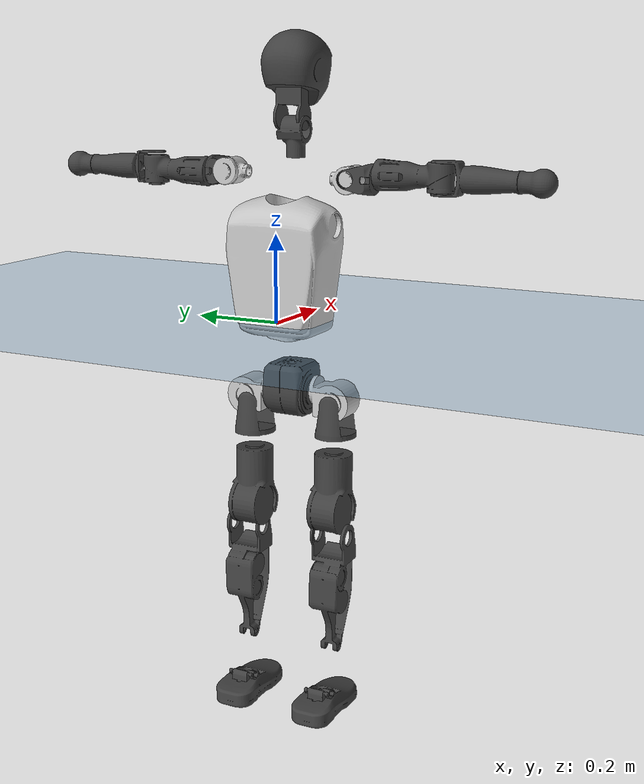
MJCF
<mujoco model="T1">
  <compiler angle="radian" assetdir="assets" balanceinertia="true" inertiafromgeom="false"/>

  <option timestep="0.005" density="1.2" viscosity="2e-05"/>

  <size nkey="1"/>

  <visual>
    <quality shadowsize="8192"/>
    <map shadowclip="0.5"/>
  </visual>

  <default>
    <default class="/">
      <joint armature="0.01" damping="0.01" frictionloss="0.1"/>
      <geom contype="0" conaffinity="0" group="1" solref="-1000 -80"/>
      <site size="0.01 0.005 0.005" group="5"/>
      <general forcelimited="true" biastype="affine" gainprm="25" biasprm="0 -25 -0.6"/>
      <default class="t1">
        <geom rgba="0.25 0.25 0.25 1"/>
        <default class="visual">
          <geom type="mesh" group="2"/>
        </default>
        <default class="collision">
          <geom group="3"/>
        </default>
        <default class="foot">
          <geom size="0.1115 0.05 0.015" type="box" condim="6" group="4" priority="1" solimp="0.015 1 0.015"/>
        </default>
        <default class="reward_collision_sphere">
          <geom group="5" rgba="1 0 0 1"/>
        </default>
      </default>
    </default>
  </default>

  <asset>
    <texture type="skybox" colorspace="auto" name="//unnamed_texture_0" builtin="gradient" rgb1="0.95 0.95 0.95" rgb2="0.95 0.95 0.95" width="100" height="600"/>
    <texture type="2d" colorspace="auto" name="texplane" builtin="checker" rgb1="0.345 0.575 0.748" rgb2="0.345 0.575 0.748" markrgb="1 1 1" width="512" height="512"/>
    <material name="MatPlane" class="/" texture="texplane" texuniform="true" texrepeat="2 2" specular="0.9"/>
    <mesh name="Trunk" class="/" file="Trunk.stl"/>
    <mesh name="H1" class="/" file="H1.stl"/>
    <mesh name="H2" class="/" file="H2.stl"/>
    <mesh name="AL1" class="/" file="AL1.stl"/>
    <mesh name="AL2" class="/" file="AL2.stl"/>
    <mesh name="AL3" class="/" file="AL3.stl"/>
    <mesh name="left_hand_link" class="/" file="left_hand_link.stl"/>
    <mesh name="AR1" class="/" file="AR1.stl"/>
    <mesh name="AR2" class="/" file="AR2.stl"/>
    <mesh name="AR3" class="/" file="AR3.stl"/>
    <mesh name="right_hand_link" class="/" file="right_hand_link.stl"/>
    <mesh name="Waist" class="/" file="Waist.stl"/>
    <mesh name="Hip_Pitch_Left" class="/" file="Hip_Pitch_Left.stl"/>
    <mesh name="Hip_Roll_Left" class="/" file="Hip_Roll_Left.stl"/>
    <mesh name="Hip_Yaw_Left" class="/" file="Hip_Yaw_Left.stl"/>
    <mesh name="Shank_Left" class="/" file="Shank_Left.stl"/>
    <mesh name="Ankle_Cross_Left" class="/" file="Ankle_Cross_Left.stl"/>
    <mesh name="left_foot_link" class="/" file="left_foot_link.stl"/>
    <mesh name="Hip_Pitch_Right" class="/" file="Hip_Pitch_Right.stl"/>
    <mesh name="Hip_Roll_Right" class="/" file="Hip_Roll_Right.stl"/>
    <mesh name="Hip_Yaw_Right" class="/" file="Hip_Yaw_Right.stl"/>
    <mesh name="Shank_Right" class="/" file="Shank_Right.stl"/>
    <mesh name="Ankle_Cross_Right" class="/" file="Ankle_Cross_Right.stl"/>
    <mesh name="right_foot_link" class="/" file="right_foot_link.stl"/>
  </asset>

  <worldbody>
    <geom name="floor" class="/" size="100 100 0.125" type="plane" group="0" material="MatPlane"/>
    <light name="toplight_shadow" class="/" pos="0 0 5" dir="0.0990148 0.0990148 -0.990148" type="directional" ambient="0.04 0.04 0.04" diffuse="0.55 0.55 0.55" specular="0.12 0.12 0.12"/>
    <light name="toplight_fill" class="/" pos="0 0 5" dir="0.0990148 0.0990148 -0.990148" type="directional" castshadow="false" ambient="0.04 0.04 0.04" diffuse="0.3 0.3 0.3" specular="0.08 0.08 0.08"/>
    <body name="trunk" childclass="t1" pos="-0.000486724 0.0032175 0.00185072" quat="0.999996 0.000844442 -0.00231385 -0.00165501">
      <inertial pos="0.0792091 0.00141288 0.15047" quat="0.999501 0.0212189 -0.0113618 0.0204535" mass="25.8802" diaginertia="0.424523 0.0884127 0.317547"/>
      <joint name="//unnamed_joint_0" type="free" armature="0" damping="0" frictionloss="0"/>
      <geom name="//unnamed_geom_1" class="visual" rgba="0.76 0.76 0.76 1" mesh="Trunk"/>
      <geom name="//unnamed_geom_2" class="collision" size="0.0975082 0.130011 0.195016" pos="0.0854348 0 0.173425" type="box"/>
      <geom name="//unnamed_geom_3" class="reward_collision_sphere" size="0.149513" pos="0.0854348 0 0.144521"/>
      <geom name="//unnamed_geom_4" class="reward_collision_sphere" size="0.0195016" pos="0.0854348 0.0876528 0"/>
      <geom name="//unnamed_geom_5" class="reward_collision_sphere" size="0.0195016" pos="0.0854348 -0.0876528 0"/>
      <geom name="//unnamed_geom_6" class="reward_collision_sphere" size="0.0195016" pos="0.0854348 0.110339 0.260137"/>
      <geom name="//unnamed_geom_7" class="reward_collision_sphere" size="0.0195016" pos="0.0854348 -0.110339 0.260137"/>
      <site name="imu" pos="-0.0279459 -0.00147649 0.0271645" size="0.0130011"/>
      <camera name="track" pos="0 -2.06242 0" quat="0.707107 0.707107 0 0" mode="trackcom"/>
      <camera name="ego_camera" pos="0.173717 0 0.606986" quat="-0.5 -0.5 0.5 0.5"/>
      <body name="H1" pos="0.0956013 -0.00180224 0.360099" quat="1 -8.18361e-05 7.03863e-06 0.000228144">
        <inertial pos="-0.00155981 -0.00353829 0.0828907" quat="0.764971 -0.0181973 0.00751674 0.643764" mass="0.970731" diaginertia="0.00145235 0.000252516 0.000944766"/>
        <joint name="AAHead_yaw" pos="0 0 0" axis="0.00401114 0.00309491 0.999987" range="-1.68107 1.60982" armature="0.00726576" damping="0.0159767" frictionloss="0.076297"/>
        <geom name="//unnamed_geom_8" class="visual" mesh="H1"/>
        <body name="H2" pos="0.00217605 0.0109174 0.089495" quat="1 -0.000331398 0.000666363 0.000531401">
          <inertial pos="0.00431335 0.00840442 0.152499" quat="0.992728 0.0820031 -0.0687552 -0.0551312" mass="1.37602" diaginertia="0.0124317 0.0025886 0.0112692"/>
          <joint name="Head_pitch" pos="0 0 0" axis="0.00577147 -0.999982 0.00166172" range="-1.2004 0.354407" armature="0.0101196" damping="0.0502548" frictionloss="0.138635"/>
          <geom name="//unnamed_geom_9" class="visual" mesh="H2"/>
          <geom name="//unnamed_geom_10" class="collision" size="0.104009" pos="0.0142391 0 0.158973"/>
          <geom name="//unnamed_geom_11" class="reward_collision_sphere" size="0.11701" pos="0.0284783 0 0.144521"/>
        </body>
      </body>
      <body name="AL1" pos="0.0828783 0.11261 0.325302" quat="0.999987 -0.000700599 0.00495018 0.0011941">
        <inertial pos="0.00364625 0.0477214 -0.00163714" quat="0.505853 0.496625 -0.502753 0.494687" mass="1.21912" diaginertia="0.00840286 0.00175912 0.00210271"/>
        <joint name="Left_Shoulder_Pitch" pos="0 0 0" axis="-0.0261962 0.999593 -0.0112998" stiffness="0.00222334" range="-3.23137 1.03227" armature="0.0129114" damping="0.0514844" frictionloss="0.107693"/>
        <geom name="//unnamed_geom_12" class="visual" rgba="0.76 0.76 0.76 1" mesh="AL1"/>
        <body name="AL2" pos="0.00831005 0.0470332 -0.00143109" quat="1 0.000382161 0.000153337 -0.000294169">
          <inertial pos="0.00786214 0.030428 0.00302854" quat="0.485555 0.512884 -0.491737 0.509295" mass="0.325459" diaginertia="0.00227119 0.000382775 0.00110096"/>
          <joint name="Left_Shoulder_Roll" pos="0 0 0" axis="-0.999978 -0.00607456 -0.00260638" stiffness="0.0531896" range="-1.63329 1.77088" armature="0.00690467" damping="0.0199358" frictionloss="0.12759"/>
          <geom name="//unnamed_geom_13" class="visual" mesh="AL2"/>
          <body name="AL3" pos="-0.000976316 0.0616951 -0.00373624" quat="1 -7.37415e-07 1.58944e-05 0.000107107">
            <inertial pos="-0.00782374 0.09684 -0.00202821" quat="0.704293 0.709663 -0.0186942 0.000670022" mass="2.67838" diaginertia="0.0740572 0.0164474 0.00454859"/>
            <joint name="Left_Elbow_Pitch" pos="0 0 0" axis="0.0103581 -0.9999 0.00962206" stiffness="0.00869523" range="-2.07787 2.30859" armature="0.0060514" damping="0.0105084" frictionloss="0.117522"/>
            <geom name="//unnamed_geom_14" class="visual" mesh="AL3"/>
            <geom name="//unnamed_geom_15" class="collision" size="0.0390033 0.0975082" pos="0 0.0515604 0" quat="0.707105 0.707108 0 0" type="cylinder"/>
            <geom name="//unnamed_geom_16" class="reward_collision_sphere" size="0.0468039"/>
            <body name="left_hand_link" pos="7.63704e-05 0.15261 0.00479014" quat="0.999989 -0.00466471 6.89725e-05 -0.000121368">
              <inertial pos="0.00958984 0.110872 0.000308879" quat="0.707783 0.70643 5.85595e-05 -0.000379908" mass="0.708098" diaginertia="0.052638 0.00925294 0.00122166"/>
              <joint name="Left_Elbow_Yaw" pos="0 0 0" axis="0.00169155 -0.00426074 0.999989" range="-2.46714 0.197095" armature="0.0121192" damping="0" frictionloss="0.140893"/>
              <geom name="//unnamed_geom_17" class="visual" mesh="left_hand_link"/>
              <geom name="//unnamed_geom_18" class="collision" size="0.0390033 0.11376" pos="0 0.134057 0" quat="0.707105 0.707108 0 0" type="cylinder"/>
              <geom name="//unnamed_geom_19" class="reward_collision_sphere" size="0.0650055"/>
              <geom name="//unnamed_geom_20" class="reward_collision_sphere" size="0.0455038" pos="0 0.113433 0"/>
              <geom name="//unnamed_geom_21" class="reward_collision_sphere" size="0.0455038" pos="0 0.22171 0"/>
            </body>
          </body>
        </body>
      </body>
      <body name="AR1" pos="0.0800744 -0.101179 0.318068" quat="0.999999 -0.000452051 0.00126365 5.71216e-05">
        <inertial pos="0.00366499 -0.0356917 0.000146824" quat="0.49949 0.482095 -0.520329 0.497344" mass="1.25713" diaginertia="0.00905482 0.00160728 0.0019644"/>
        <joint name="Right_Shoulder_Pitch" pos="0 0 0" axis="-0.0245087 -0.999304 0.0281333" stiffness="0.0519016" range="-1.20153 3.37857" armature="0.00805111" damping="0.0140653" frictionloss="0.148624"/>
        <geom name="//unnamed_geom_22" class="visual" rgba="0.76 0.76 0.76 1" mesh="AR1"/>
        <body name="AR2" pos="-0.00984649 -0.0531671 0.00409085" quat="0.999991 -0.000883856 0.00151791 -0.00376991">
          <inertial pos="0.0102511 -0.0367303 0.00167552" quat="0.5106 0.478187 -0.518203 0.492028" mass="0.387223" diaginertia="0.0023276 0.000359374 0.00110711"/>
          <joint name="Right_Shoulder_Roll" pos="0 0 0" axis="-0.999991 -0.00413357 -0.00128172" range="-1.77084 1.54763" armature="0.0140213" damping="0" frictionloss="0.0602868"/>
          <geom name="//unnamed_geom_23" class="visual" mesh="AR2"/>
          <body name="AR3" pos="-0.00425969 -0.0638343 0.0109708" quat="1 -4.59728e-05 -0.0002351 0.000215829">
            <inertial pos="0.00208292 -0.0795914 0.00226694" quat="0.695881 0.717321 -0.011457 0.0326923" mass="2.27772" diaginertia="0.0766399 0.015086 0.00357743"/>
            <joint name="Right_Elbow_Pitch" pos="0 0 0" axis="-0.038179 0.999225 -0.00956191" range="-2.11255 2.35153" armature="0.0188707" damping="0.0161066" frictionloss="0.0986217"/>
            <geom name="//unnamed_geom_24" class="visual" mesh="AR3"/>
            <geom name="//unnamed_geom_25" class="collision" size="0.0390033 0.0975082" pos="0 -0.0515604 0" quat="0.707105 0.707108 0 0" type="cylinder"/>
            <geom name="//unnamed_geom_26" class="reward_collision_sphere" size="0.0468039"/>
            <body name="right_hand_link" pos="2.41937e-05 -0.152875 -0.00128916" quat="0.999994 0.00215303 -0.00053408 -0.00262975">
              <inertial pos="0.00201118 -0.110169 -0.00768675" quat="0.707082 0.707128 0.00222827 -0.000413393" mass="0.737447" diaginertia="0.0485455 0.0100603 0.00141466"/>
              <joint name="Right_Elbow_Yaw" pos="0 0 0" axis="-0.00851683 -0.0212114 0.999739" range="-0.0357266 2.34184" armature="0.00755713" damping="0.0595078" frictionloss="0.0922418"/>
              <geom name="//unnamed_geom_27" class="visual" mesh="right_hand_link"/>
              <geom name="//unnamed_geom_28" class="collision" size="0.0390033 0.11376" pos="0 -0.134057 0" quat="0.707105 0.707108 0 0" type="cylinder"/>
              <geom name="//unnamed_geom_29" class="reward_collision_sphere" size="0.0650055"/>
              <geom name="//unnamed_geom_30" class="reward_collision_sphere" size="0.0455038" pos="0 -0.113433 0"/>
              <geom name="//unnamed_geom_31" class="reward_collision_sphere" size="0.0455038" pos="0 -0.22171 0"/>
            </body>
          </body>
        </body>
      </body>
      <body name="Waist" pos="0.0922687 0.00698281 -0.176657" quat="1 -1.76656e-05 -3.67614e-05 3.65944e-05">
        <inertial pos="0.0115111 -0.000422431 0.0116092" quat="0.978481 0.0310862 -0.203942 0.00398663" mass="6.39471" diaginertia="0.0360972 0.00683734 0.0334651"/>
        <joint name="Waist" pos="0 0 0" axis="-0.0383459 0.0105828 0.999208" stiffness="0.0176648" range="-1.55859 1.73436" armature="0.0142724" damping="0" frictionloss="0.0805148"/>
        <geom name="//unnamed_geom_32" class="visual" mesh="Waist"/>
        <body name="Hip_Pitch_Left" pos="0.00228351 0.111024 -2.94477e-05" quat="0.999999 0.00105428 0.000805797 -0.000850345">
          <inertial pos="5.42095e-05 -0.00478827 -0.0280999" quat="0.975137 0.221071 0.0152979 0.000876658" mass="2.217" diaginertia="0.0105562 0.00155227 0.00783764"/>
          <joint name="Left_Hip_Pitch" pos="0 0 0" axis="0.0515947 0.998495 -0.0186064" stiffness="0.0465723" range="-1.79629 1.38104" armature="0.010904" damping="0.0442061" frictionloss="0.1181"/>
          <geom name="//unnamed_geom_33" class="visual" rgba="0.76 0.76 0.76 1" mesh="Hip_Pitch_Left"/>
          <body name="Hip_Roll_Left" pos="0.00103061 -0.0110627 -0.0362245" quat="0.999986 -0.00166391 0.002123 0.0045574">
            <inertial pos="0.00832638 0.00147085 -0.077004" quat="0.704487 -0.00649512 -0.00915479 0.709628" mass="0.946373" diaginertia="0.0102751 0.00203691 0.00364784"/>
            <joint name="Left_Hip_Roll" pos="0 0 0" axis="-0.998898 -0.0129139 0.0451212" range="-1.61245 0.162224" armature="0.0149012" damping="0" frictionloss="0.125913"/>
            <geom name="//unnamed_geom_34" class="visual" mesh="Hip_Roll_Left"/>
            <geom name="//unnamed_geom_35" class="reward_collision_sphere" size="0.071506"/>
            <body name="Hip_Yaw_Left" pos="-0.00179091 0.00125085 -0.116096" quat="1 1.48806e-05 -0.000156398 -2.24765e-05">
              <inertial pos="-0.00863535 -0.000242806 -0.129628" quat="0.677297 -0.0263846 -0.0694634 0.731948" mass="5.41031" diaginertia="0.152357 0.0321345 0.0181234"/>
              <joint name="Left_Hip_Yaw" pos="0 0 0" axis="-0.00143278 0.010368 -0.999945" range="-0.886726 1.03077" armature="0.0129743" damping="0" frictionloss="0.140966"/>
              <geom name="//unnamed_geom_36" class="visual" mesh="Hip_Yaw_Left"/>
              <geom name="//unnamed_geom_37" class="collision" size="0.0650055 0.104009" type="cylinder"/>
              <body name="Shank_Left" pos="-0.01852 0.00829289 -0.190714" quat="0.999999 0.000239973 0.00085898 0.000534135">
                <inertial pos="-0.00666544 0.00655824 -0.181598" quat="0.996043 -0.0111986 -0.000478859 0.0881651" mass="3.43227" diaginertia="0.191169 0.0373011 0.0122907"/>
                <joint name="Left_Knee_Pitch" pos="0 0 0" axis="-0.00743758 0.999957 0.00551192" range="-0.0340848 2.40325" armature="0.00801751" damping="0.0340726" frictionloss="0.129988"/>
                <geom name="//unnamed_geom_38" class="visual" mesh="Shank_Left"/>
                <geom name="//unnamed_geom_39" class="collision" size="0.0650055 0.0975082" pos="0 0 -0.173425" type="cylinder"/>
                <geom name="//unnamed_geom_40" class="reward_collision_sphere" size="0.0845071"/>
                <body name="Ankle_Cross_Left" pos="-0.000444841 -0.00563776 -0.39759" quat="0.999991 0.00174857 -0.00254597 0.00275194">
                  <inertial pos="-0.00245377 0.0100179 -0.0127935" quat="0.433156 0.542046 0.57606 0.432106" mass="0.155722" diaginertia="0.000162429 2.64745e-05 6.50634e-05"/>
                  <joint name="Left_Ankle_Pitch" pos="0 0 0" axis="0.022993 0.999714 -0.00662319" range="-0.864485 0.331429" armature="0.0137089" damping="0" frictionloss="0.141038"/>
                  <geom name="//unnamed_geom_41" class="visual" mesh="Ankle_Cross_Left"/>
                  <body name="left_foot_link" pos="0.00708297 0.00969191 -0.0158108" quat="1 -1.95699e-05 0.000839001 -0.00034834">
                    <inertial pos="-0.00821956 -0.00193207 -0.0236029" quat="-0.000254503 0.620831 -0.000181667 0.783945" mass="1.53767" diaginertia="0.015714 0.00281043 0.0140827"/>
                    <joint name="Left_Ankle_Roll" pos="0 0 0" axis="-0.999973 0.007379 -5.42892e-05" range="-0.478366 0.428019" armature="0.0186365" damping="0.0262152" frictionloss="0.11966"/>
                    <geom name="//unnamed_geom_42" class="visual" mesh="left_foot_link"/>
                    <geom name="left_foot" class="foot" size="0.103515 0.0813629 0.0195984" pos="0.0142391 0 -0.0216781"/>
                    <geom name="//unnamed_geom_44" class="reward_collision_sphere" size="0.0676057" pos="0.0142391 0 -0.0216781"/>
                    <geom name="//unnamed_geom_45" class="reward_collision_sphere" size="0.0390033" pos="0.135272 -0.0237178 -0.0216781"/>
                    <geom name="//unnamed_geom_46" class="reward_collision_sphere" size="0.0390033" pos="-0.0996739 -0.0237178 -0.0216781"/>
                    <site name="left_foot" class="foot" pos="0.0142391 0 -0.0216781" size="0.0130011"/>
                  </body>
                </body>
              </body>
            </body>
          </body>
        </body>
        <body name="Hip_Pitch_Right" pos="0.00649812 -0.113639 0.00480886" quat="0.999987 0.00155018 0.00210438 0.00445935">
          <inertial pos="-2.49601e-05 0.0188732 -0.0253968" quat="0.973268 -0.226799 0.0347647 -0.0102019" mass="2.3535" diaginertia="0.0117029 0.00194164 0.0088812"/>
          <joint name="Right_Hip_Pitch" pos="0 0 0" axis="-1.48636e-05 -1 -0.00091242" stiffness="0.0049594" range="-1.45365 1.79333" armature="0.0149604" damping="0.0197226" frictionloss="0.0676527"/>
          <geom name="//unnamed_geom_47" class="visual" rgba="0.76 0.76 0.76 1" mesh="Hip_Pitch_Right"/>
          <body name="Hip_Roll_Right" pos="0.000670439 0.00163328 -0.0272033" quat="0.999999 -0.000548817 -0.00079666 0.000298361">
            <inertial pos="0.0101014 -0.0103701 -0.0678641" quat="0.714258 -0.00836916 0.000746925 0.699832" mass="0.806601" diaginertia="0.00954495 0.00173627 0.0031939"/>
            <joint name="Right_Hip_Roll" pos="0 0 0" axis="-0.999987 -0.00501731 -0.000881173" range="-0.227251 1.54718" armature="0.0112374" damping="0.0120007" frictionloss="0.139059"/>
            <geom name="//unnamed_geom_48" class="visual" mesh="Hip_Roll_Right"/>
            <geom name="//unnamed_geom_49" class="reward_collision_sphere" size="0.071506"/>
            <body name="Hip_Yaw_Right" pos="-0.000304054 0.0047737 -0.119764" quat="0.999999 0.00125548 0.000607827 -0.000241484">
              <inertial pos="-0.0148271 0.00479446 -0.128778" quat="0.714766 -0.0322171 -0.0309397 0.697936" mass="4.94978" diaginertia="0.142127 0.0299146 0.01587"/>
              <joint name="Right_Hip_Yaw" pos="0 0 0" axis="0.00265976 -0.0027168 -0.999993" range="-1.02482 1.14561" armature="0.0199185" damping="0" frictionloss="0.0721187"/>
              <geom name="//unnamed_geom_50" class="visual" mesh="Hip_Yaw_Right"/>
              <geom name="//unnamed_geom_51" class="collision" size="0.0650055 0.104009" type="cylinder"/>
              <body name="Shank_Right" pos="-0.0213306 -0.00929589 -0.194039" quat="0.999991 0.00127778 -0.00368064 0.00143017">
                <inertial pos="-0.00755133 -0.00647229 -0.186902" quat="0.997755 -0.00256659 -0.0397617 -0.053836" mass="4.27569" diaginertia="0.217541 0.0399784 0.0107533"/>
                <joint name="Right_Knee_Pitch" pos="0 0 0" axis="0.00141671 -0.999274 0.0380626" range="-2.48755 0.139397" armature="0.0124552" damping="0" frictionloss="0.141025"/>
                <geom name="//unnamed_geom_52" class="visual" mesh="Shank_Right"/>
                <geom name="//unnamed_geom_53" class="collision" size="0.0650055 0.0975082" pos="0 0 -0.173425" type="cylinder"/>
                <geom name="//unnamed_geom_54" class="reward_collision_sphere" size="0.0845071"/>
                <body name="Ankle_Cross_Right" pos="-0.00341257 0.00734005 -0.406608" quat="0.999985 -0.00487931 -0.00179192 -0.00190786">
                  <inertial pos="-0.00370309 0.00150018 -0.0178781" quat="0.430522 0.561767 0.546165 0.448076" mass="0.165023" diaginertia="0.00016997 2.98737e-05 7.82878e-05"/>
                  <joint name="Right_Ankle_Pitch" pos="0 0 0" axis="-0.00443113 -0.999981 0.00427831" range="-0.203646 0.897758" armature="0.0142954" damping="0.000814817" frictionloss="0.122024"/>
                  <geom name="//unnamed_geom_55" class="visual" mesh="Ankle_Cross_Right"/>
                  <body name="right_foot_link" pos="0.0012043 0.00788454 -0.0144311" quat="1 -7.76112e-06 0.000109547 -2.16058e-05">
                    <inertial pos="-0.00248184 -0.00125941 -0.00609456" quat="7.49234e-05 0.620557 0.000112362 0.784162" mass="1.51774" diaginertia="0.0160412 0.00276382 0.0146024"/>
                    <joint name="Right_Ankle_Roll" pos="0 0 0" axis="-0.999617 -0.0192788 -0.0198486" stiffness="0.0219537" range="-0.660985 0.424326" armature="0.00793605" damping="0.00872059" frictionloss="0.166036"/>
                    <geom name="//unnamed_geom_56" class="visual" mesh="right_foot_link"/>
                    <geom name="right_foot" class="foot" size="0.120942 0.0792979 0.0187552" pos="0.0142391 0 -0.0216781"/>
                    <geom name="//unnamed_geom_58" class="reward_collision_sphere" size="0.0520044"/>
                    <geom name="//unnamed_geom_59" class="reward_collision_sphere" size="0.0390033" pos="0.0142391 0 -0.0216781"/>
                    <geom name="//unnamed_geom_60" class="reward_collision_sphere" size="0.0390033" pos="0.135272 0.0237178 -0.0216781"/>
                    <geom name="//unnamed_geom_61" class="reward_collision_sphere" size="0.0390033" pos="-0.0996739 0.0237178 -0.0216781"/>
                    <site name="right_foot" class="foot" pos="0.0142391 0 -0.0216781" size="0.0130011"/>
                  </body>
                </body>
              </body>
            </body>
          </body>
        </body>
      </body>
    </body>
  </worldbody>

  <contact>
    <pair class="/" geom1="floor" geom2="left_foot" name="//unnamed_contact_0"/>
    <pair class="/" geom1="floor" geom2="right_foot" name="//unnamed_contact_1"/>
  </contact>

  <actuator>
    <general name="AAHead_yaw" class="/" joint="AAHead_yaw" forcerange="-10.5205 10.5205" gainprm="35.7889" biasprm="0 -35.7889 -0.805384"/>
    <general name="Head_pitch" class="/" joint="Head_pitch" forcerange="-7.30159 7.30159" gainprm="35.7889" biasprm="0 -35.7889 -0.805384"/>
    <general name="Left_Shoulder_Pitch" class="/" joint="Left_Shoulder_Pitch" forcerange="-22.1831 22.1831" gainprm="35.7889" biasprm="0 -35.7889 -0.805384"/>
    <general name="Left_Shoulder_Roll" class="/" joint="Left_Shoulder_Roll" forcerange="-16.6109 16.6109" gainprm="35.7889" biasprm="0 -35.7889 -0.805384"/>
    <general name="Left_Elbow_Pitch" class="/" joint="Left_Elbow_Pitch" forcerange="-22.3268 22.3268" gainprm="35.7889" biasprm="0 -35.7889 -0.805384"/>
    <general name="Left_Elbow_Yaw" class="/" joint="Left_Elbow_Yaw" forcerange="-25.9615 25.9615" gainprm="35.7889" biasprm="0 -35.7889 -0.805384"/>
    <general name="Right_Shoulder_Pitch" class="/" joint="Right_Shoulder_Pitch" forcerange="-24.2428 24.2428" gainprm="35.7889" biasprm="0 -35.7889 -0.805384"/>
    <general name="Right_Shoulder_Roll" class="/" joint="Right_Shoulder_Roll" forcerange="-24.7177 24.7177" gainprm="35.7889" biasprm="0 -35.7889 -0.805384"/>
    <general name="Right_Elbow_Pitch" class="/" joint="Right_Elbow_Pitch" forcerange="-23.9741 23.9741" gainprm="35.7889" biasprm="0 -35.7889 -0.805384"/>
    <general name="Right_Elbow_Yaw" class="/" joint="Right_Elbow_Yaw" forcerange="-22.9984 22.9984" gainprm="35.7889" biasprm="0 -35.7889 -0.805384"/>
    <general name="Waist" class="/" joint="Waist" forcerange="-50.4706 50.4706" gainprm="35.7889" biasprm="0 -35.7889 -0.805384"/>
    <general name="Left_Hip_Pitch" class="/" joint="Left_Hip_Pitch" forcerange="-60.8646 60.8646" gainprm="35.7889" biasprm="0 -35.7889 -0.805384"/>
    <general name="Left_Hip_Roll" class="/" joint="Left_Hip_Roll" forcerange="-36.328 36.328" gainprm="35.7889" biasprm="0 -35.7889 -0.805384"/>
    <general name="Left_Hip_Yaw" class="/" joint="Left_Hip_Yaw" forcerange="-38.329 38.329" gainprm="35.7889" biasprm="0 -35.7889 -0.805384"/>
    <general name="Left_Knee_Pitch" class="/" joint="Left_Knee_Pitch" forcerange="-98.2411 98.2411" gainprm="35.7889" biasprm="0 -35.7889 -0.805384"/>
    <general name="Left_Ankle_Pitch" class="/" joint="Left_Ankle_Pitch" forcerange="-16.0718 16.0718" gainprm="35.7889" biasprm="0 -35.7889 -0.805384"/>
    <general name="Left_Ankle_Roll" class="/" joint="Left_Ankle_Roll" forcerange="-27.5149 27.5149" gainprm="35.7889" biasprm="0 -35.7889 -0.805384"/>
    <general name="Right_Hip_Pitch" class="/" joint="Right_Hip_Pitch" forcerange="-58.9395 58.9395" gainprm="35.7889" biasprm="0 -35.7889 -0.805384"/>
    <general name="Right_Hip_Roll" class="/" joint="Right_Hip_Roll" forcerange="-49.2706 49.2706" gainprm="35.7889" biasprm="0 -35.7889 -0.805384"/>
    <general name="Right_Hip_Yaw" class="/" joint="Right_Hip_Yaw" forcerange="-26.0134 26.0134" gainprm="35.7889" biasprm="0 -35.7889 -0.805384"/>
    <general name="Right_Knee_Pitch" class="/" joint="Right_Knee_Pitch" forcerange="-76.8758 76.8758" gainprm="35.7889" biasprm="0 -35.7889 -0.805384"/>
    <general name="Right_Ankle_Pitch" class="/" joint="Right_Ankle_Pitch" forcerange="-25.6396 25.6396" gainprm="35.7889" biasprm="0 -35.7889 -0.805384"/>
    <general name="Right_Ankle_Roll" class="/" joint="Right_Ankle_Roll" forcerange="-18.803 18.803" gainprm="35.7889" biasprm="0 -35.7889 -0.805384"/>
  </actuator>

  <sensor>
    <gyro site="imu" name="imu_angular_velocity"/>
    <velocimeter site="imu" name="imu_linear_velocity"/>
    <framelinvel objtype="site" objname="left_foot" name="left_foot_global_linear_velocity"/>
    <framelinvel objtype="site" objname="right_foot" name="right_foot_global_linear_velocity"/>
  </sensor>

  <keyframe>
    <key name="home" qpos="0 0 0.6385 1 0 0 0 0 0 0 1.4 0 -0.4 0 -1.4 0 0.4 0 -0.4 0 0 0.8 -0.4 0 0.4 0 0 -0.8 0.4 0"/>
  </keyframe>
</mujoco>
